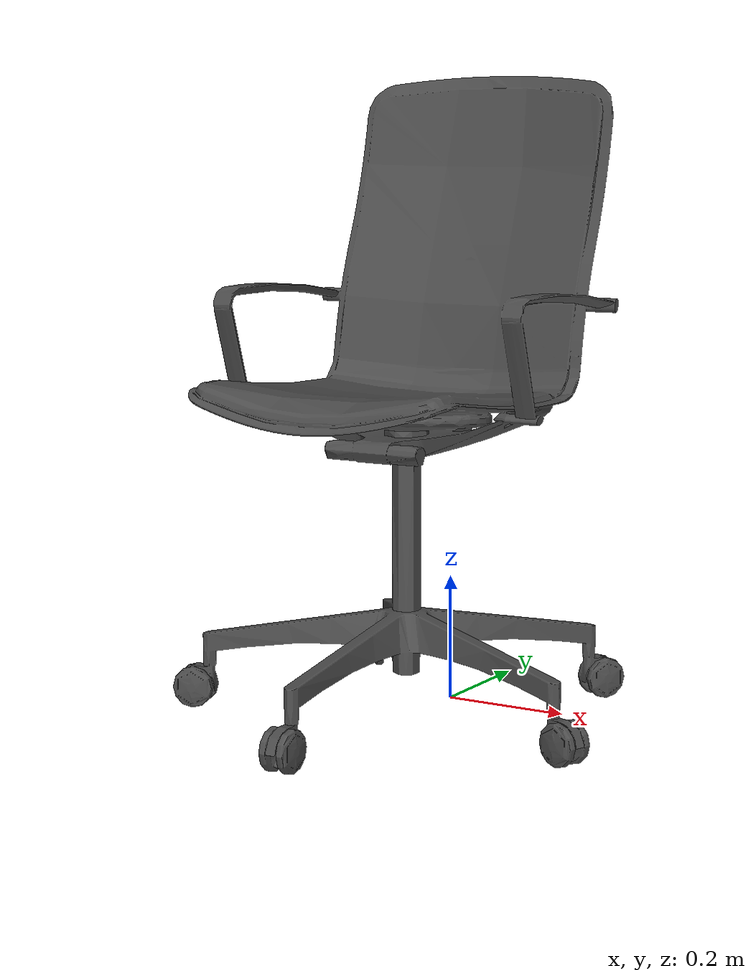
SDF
<?xml version="1.0" ?>
<sdf version="1.5">
  <model name="office_chair">
    <static>true</static>
    <link name='defaultModel_0::custom_0'>
      <pose>0 0 0 0 0 0</pose>
      <gravity>1</gravity>
      <self_collide>0</self_collide>
      <kinematic>0</kinematic>
      <visual name='custom_0_visual'>
        <pose>0 0 0.474 1.57079 0 0</pose>
        <geometry>
          <mesh>
            <uri>model://office_chair/office_chair.dae</uri>
            <scale>0.001 0.001 0.001</scale>
          </mesh>
        </geometry>
        <material>
          <script>
            <uri>file://media/materials/scripts/gazebo.material</uri>
            <name>Gazebo/DarkGrey</name>
          </script>
        </material>
      </visual>
      <collision name='defaultModel_0::custom_0_collision'>
        <geometry>
          <mesh>
            <uri>model://office_chair/office_chair.dae</uri>
            <scale>0.001 0.001 0.001</scale>
          </mesh>
        </geometry>
        <pose>0 0 0.474 1.57079 0 0</pose>
      </collision>
    </link>
  </model>
</sdf>
